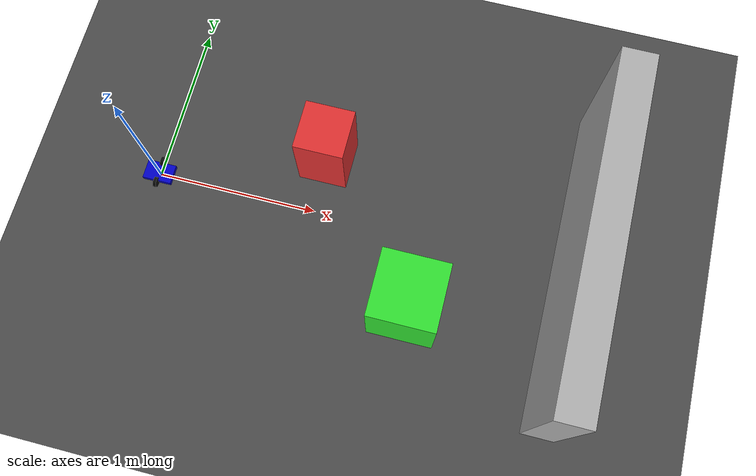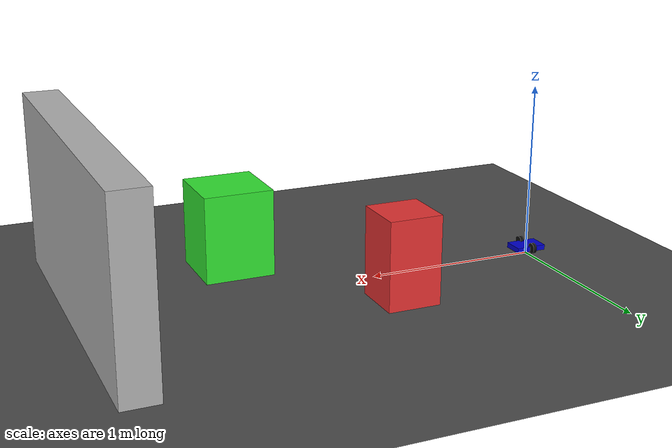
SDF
<?xml version="1.0"?>
<sdf version="1.6">
  <world name="avoider_world">

    <!-- فيزياء -->
    <physics type="ode">
      <max_step_size>0.001</max_step_size>
      <real_time_update_rate>1000</real_time_update_rate>
    </physics>
    <gravity>0 0 -9.81</gravity>

    <!-- مشهد وإضاءة -->
    <scene>
      <ambient>0.5 0.5 0.5 1</ambient>
      <background>0.7 0.9 1.0 1</background>
      <shadows>true</shadows>
      <sky>
        <clouds>
          <speed>0.2</speed><direction>0</direction>
          <humidity>0.4</humidity><mean_size>0.5</mean_size>
          <ambient>0.9 0.9 0.9 1</ambient>
        </clouds>
      </sky>
    </scene>

    <!-- شمس -->
    <include><uri>model://sun</uri></include>

    <!-- أرض أسفلت ثابتة 30×30 م -->
    <model name="asphalt_ground">
      <static>true</static>
      <pose>0 0 0 0 0 0</pose>
      <link name="link">
        <collision name="collision">
          <geometry><plane><normal>0 0 1</normal><size>30 30</size></plane></geometry>
          <surface><friction><ode><mu>1.2</mu><mu2>1.0</mu2></ode></friction></surface>
        </collision>
        <visual name="visual">
          <geometry><plane><normal>0 0 1</normal><size>30 30</size></plane></geometry>
          <material>
            <script>
              <uri>file://media/materials/scripts/gazebo.material</uri>
              <name>Gazebo/Asphalt</name>
            </script>
          </material>
        </visual>
      </link>
    </model>

    <!-- الروبوت -->
    <include><uri>model://avoider_robot</uri><pose>0 0 0 0 0 0</pose></include>

    <!-- عوائق -->
    <model name="box1">
      <pose>1.0 0.35 0.25 0 0 0</pose><static>true</static>
      <link name="link">
        <collision name="collision"><geometry><box><size>0.3 0.3 0.5</size></box></geometry></collision>
        <visual name="visual"><geometry><box><size>0.3 0.3 0.5</size></box></geometry>
          <material><ambient>0.9 0.2 0.2 1</ambient><diffuse>0.9 0.2 0.2 1</diffuse></material>
        </visual>
      </link>
    </model>

    <model name="box2">
      <pose>1.7 -0.45 0.25 0 0 0</pose><static>true</static>
      <link name="link">
        <collision name="collision"><geometry><box><size>0.4 0.4 0.5</size></box></geometry></collision>
        <visual name="visual"><geometry><box><size>0.4 0.4 0.5</size></box></geometry>
          <material><ambient>0.2 0.9 0.2 1</ambient><diffuse>0.2 0.9 0.2 1</diffuse></material>
        </visual>
      </link>
    </model>

    <model name="wall">
      <pose>2.6 0 0.5 0 0 0</pose><static>true</static>
      <link name="link">
        <collision name="collision"><geometry><box><size>0.2 2.0 1.0</size></box></geometry></collision>
        <visual name="visual"><geometry><box><size>0.2 2.0 1.0</size></box></geometry>
          <material><ambient>0.7 0.7 0.7 1</ambient><diffuse>0.7 0.7 0.7 1</diffuse></material>
        </visual>
      </link>
    </model>

    <!-- كاميرا GUI تتبع الروبوت -->
    <gui>
      <camera name="user_camera">
        <pose>2 -3 2 0.3 0.0 0.0</pose>
        <view_controller>orbit</view_controller>
        <track_visual>avoider_robot::chassis</track_visual>
      </camera>
    </gui>

  </world>
</sdf>

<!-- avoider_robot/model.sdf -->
<sdf version="1.6">
  <model name="avoider_robot">
    <pose>0 0 0.04 0 0 0</pose>
    <static>false</static>

    <!-- هيكل الروبوت -->
    <link name="base_link">
      <pose>0 0 0.04 0 0 0</pose>
      <inertial>
        <mass>0.8</mass>
        <inertia>
          <ixx>0.002</ixx><ixy>0</ixy><ixz>0</ixz>
          <iyy>0.004</iyy><iyz>0</iyz>
          <izz>0.004</izz>
        </inertia>
      </inertial>

      <collision name="base_collision">
        <geometry>
          <box><size>0.18 0.12 0.03</size></box>
        </geometry>
        <surface>
          <friction>
            <ode>
              <mu>0.8</mu>
              <mu2>0.8</mu2>
            </ode>
          </friction>
        </surface>
      </collision>

      <visual name="base_visual">
        <geometry>
          <box><size>0.18 0.12 0.03</size></box>
        </geometry>
        <material>
          <ambient>0 0 0.5 1</ambient>
          <diffuse>0 0 0.8 1</diffuse>
        </material>
      </visual>

      <!-- حساس Ray للأمام (بدون أي plugin) -->
      <sensor name="front_ray" type="ray">
        <pose>0.10 0 0.05 0 0 0</pose>
        <always_on>true</always_on>
        <update_rate>20</update_rate>
        <ray>
          <scan>
            <horizontal>
              <samples>21</samples>
              <resolution>1</resolution>
              <min_angle>-0.35</min_angle>
              <max_angle>0.35</max_angle>
            </horizontal>
          </scan>
          <range>
            <min>0.02</min>
            <max>2.8</max>
            <resolution>0.01</resolution>
          </range>
        </ray>
      </sensor>
    </link>

    <!-- عجلة يسار -->
    <link name="left_wheel_link">
      <pose>0.0 0.07 0.05 0 1.5708 0</pose>
      <inertial>
        <mass>0.05</mass>
        <inertia>
          <ixx>1e-4</ixx><ixy>0</ixy><ixz>0</ixz>
          <iyy>1e-4</iyy><iyz>0</iyz>
          <izz>1e-4</izz>
        </inertia>
      </inertial>
      <collision name="left_wheel_collision">
        <geometry>
          <cylinder><radius>0.03</radius><length>0.02</length></cylinder>
        </geometry>
        <surface>
          <friction>
            <ode>
              <mu>1.2</mu><mu2>1.2</mu2>
            </ode>
          </friction>
        </surface>
      </collision>
      <visual name="left_wheel_visual">
        <geometry>
          <cylinder><radius>0.03</radius><length>0.02</length></cylinder>
        </geometry>
        <material>
          <ambient>0.05 0.05 0.05 1</ambient>
          <diffuse>0.05 0.05 0.05 1</diffuse>
        </material>
      </visual>
    </link>

    <!-- عجلة يمين -->
    <link name="right_wheel_link">
      <pose>0.0 -0.07 0.05 0 1.5708 0</pose>
      <inertial>
        <mass>0.05</mass>
        <inertia>
          <ixx>1e-4</ixx><ixy>0</ixy><ixz>0</ixz>
          <iyy>1e-4</iyy><iyz>0</iyz>
          <izz>1e-4</izz>
        </inertia>
      </inertial>
      <collision name="right_wheel_collision">
        <geometry>
          <cylinder><radius>0.03</radius><length>0.02</length></cylinder>
        </geometry>
        <surface>
          <friction>
            <ode>
              <mu>1.2</mu><mu2>1.2</mu2>
            </ode>
          </friction>
        </surface>
      </collision>
      <visual name="right_wheel_visual">
        <geometry>
          <cylinder><radius>0.03</radius><length>0.02</length></cylinder>
        </geometry>
        <material>
          <ambient>0.05 0.05 0.05 1</ambient>
          <diffuse>0.05 0.05 0.05 1</diffuse>
        </material>
      </visual>
    </link>

    <!-- مفاصل العجلات -->
    <joint name="left_wheel_joint" type="revolute">
      <parent>base_link</parent>
      <child>left_wheel_link</child>
      <pose>0 0 0 0 0 0</pose>
      <axis>
        <xyz>0 1 0</xyz>
        <limit><lower>-1e16</lower><upper>1e16</upper></limit>
        <dynamics><friction>0.0</friction></dynamics>
      </axis>
    </joint>

    <joint name="right_wheel_joint" type="revolute">
      <parent>base_link</parent>
      <child>right_wheel_link</child>
      <pose>0 0 0 0 0 0</pose>
      <axis>
        <xyz>0 1 0</xyz>
        <limit><lower>-1e16</lower><upper>1e16</upper></limit>
        <dynamics><friction>0.0</friction></dynamics>
      </axis>
    </joint>

    <!-- هنا الـ ModelPlugin وليس داخل الـ sensor -->
    <plugin name="avoider_plugin" filename="libavoider_plugin.so">
      <left_joint>left_wheel_joint</left_joint>
      <right_joint>right_wheel_joint</right_joint>
      <safe_distance>0.28</safe_distance>
      <turn_time_ms>420</turn_time_ms>
      <speed>2.2</speed>
    </plugin>
  </model>
</sdf>
